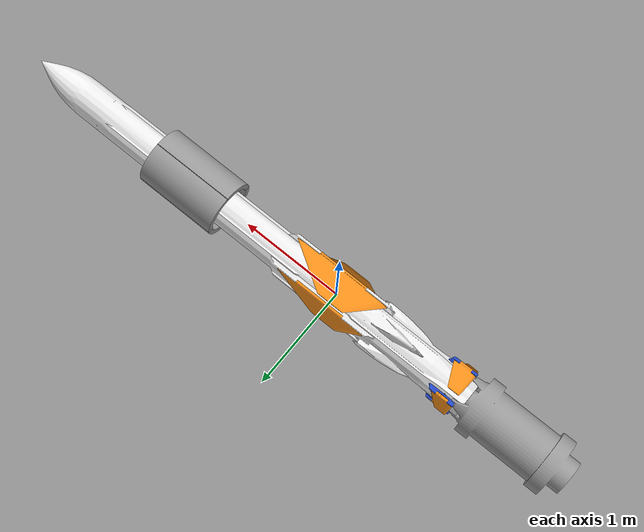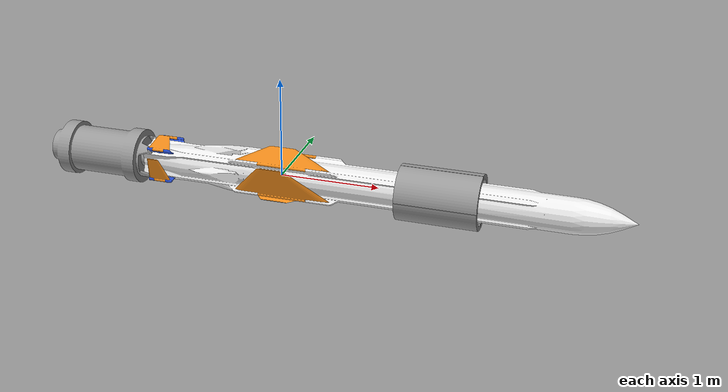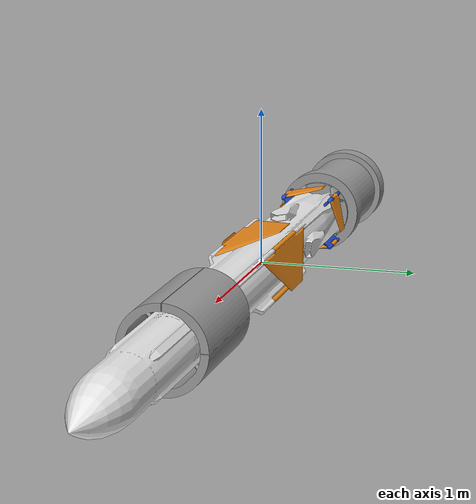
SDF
<sdf version='1.7'>
  <model name='mm40b3'>
    <link name='base_link'>
      <inertial>
        <pose>0.438711 -9e-06 -9e-06 0 -0 0</pose>
        <mass>562.768</mass>
        <inertia>
          <ixx>12.0787</ixx>
          <ixy>0</ixy>
          <ixz>0</ixz>
          <iyy>817.099</iyy>
          <iyz>0</iyz>
          <izz>817.099</izz>
        </inertia>
      </inertial>
      <collision name='base_link_collision'>
        <pose>0 0 0 0 -0 0</pose>
        <geometry>
          <mesh>
            <scale>0.001 0.001 0.001</scale>
            <uri>model://mm40b3_description/meshes/base_link.stl</uri>
          </mesh>
        </geometry>
        <surface>
          <contact>
            <ode/>
          </contact>
          <friction>
            <ode>
              <mu>0.2</mu>
              <mu2>0.2</mu2>
            </ode>
          </friction>
        </surface>
      </collision>
      <visual name='base_link_visual'>
        <pose>0 0 0 0 -0 0</pose>
        <geometry>
          <mesh>
            <scale>0.001 0.001 0.001</scale>
            <uri>model://mm40b3_description/meshes/base_link.stl</uri>
          </mesh>
        </geometry>
        <plugin name='LiftDragVisual' filename='libMultiplevectorVisual.so'>
          <topic_name vector_size='5'>AeroVectors</topic_name>
        </plugin>
        <plugin name='VectoredThrustVisual' filename='libForceVisual.so'>
          <topic_name>thrust_visual</topic_name>
          <color>Gazebo/Green</color>
        </plugin>
        <material>
          <script>
            <name>Gazebo/White</name>
            <uri>file://media/materials/scripts/gazebo.material</uri>
          </script>
        </material>
      </visual>
      <self_collide>1</self_collide>
      <gravity>1</gravity>
      <sensor name='camera_top_side' type='camera'>
        <pose>-2 0 1.5 0 0.7854 0</pose>
        <camera>
          <horizontal_fov>2</horizontal_fov>
          <image>
            <width>640</width>
            <height>480</height>
          </image>
          <clip>
            <near>0.1</near>
            <far>100</far>
          </clip>
        </camera>
        <always_on>1</always_on>
        <update_rate>30</update_rate>
      </sensor>
      <sensor name='camera_right_side' type='camera'>
        <pose>-0 -2 0 0 -0 1.5708</pose>
        <camera>
          <horizontal_fov>2</horizontal_fov>
          <image>
            <width>640</width>
            <height>480</height>
          </image>
          <clip>
            <near>0.1</near>
            <far>1000</far>
          </clip>
        </camera>
        <always_on>1</always_on>
        <update_rate>30</update_rate>
      </sensor>
    </link>
    <joint name='HolderJoint1' type='fixed'>
      <pose relative_to='base_link'>1.81433 0.132484 0.132484 0 -0 0</pose>
      <parent>base_link</parent>
      <child>Holder_1</child>
      <axis>
        <dynamics>
          <spring_reference>0</spring_reference>
          <spring_stiffness>0</spring_stiffness>
        </dynamics>
        <xyz>0 0 1</xyz>
        <limit>
          <lower>-1e+16</lower>
          <upper>1e+16</upper>
        </limit>
      </axis>
      <physics>
        <ode>
          <limit>
            <cfm>0</cfm>
            <erp>0.2</erp>
          </limit>
        </ode>
      </physics>
    </joint>
    <link name='Holder_1'>
      <pose relative_to='HolderJoint1'>0 0 0 0 -0 0</pose>
      <inertial>
        <pose>-0.2 0.025233 0.025233 0 -0 0</pose>
        <mass>13.5</mass>
        <inertia>
          <ixx>0.184494</ixx>
          <ixy>0</ixy>
          <ixz>0</ixz>
          <iyy>0.864601</iyy>
          <iyz>0.079825</iyz>
          <izz>0.864601</izz>
        </inertia>
      </inertial>
      <collision name='Holder_1_collision'>
        <pose>-1.81433 -0.132484 -0.132484 0 -0 0</pose>
        <geometry>
          <mesh>
            <scale>0.001 0.001 0.001</scale>
            <uri>model://mm40b3_description/meshes/Holder_1.stl</uri>
          </mesh>
        </geometry>
        <surface>
          <contact>
            <ode/>
          </contact>
          <friction>
            <ode>
              <mu>0.2</mu>
              <mu2>0.2</mu2>
            </ode>
          </friction>
        </surface>
      </collision>
      <visual name='Holder_1_visual'>
        <pose>-1.81433 -0.132484 -0.132484 0 -0 0</pose>
        <geometry>
          <mesh>
            <scale>0.001 0.001 0.001</scale>
            <uri>model://mm40b3_description/meshes/Holder_1.stl</uri>
          </mesh>
        </geometry>
        <material>
          <script>
            <name>Gazebo/Grey</name>
            <uri>file://media/materials/scripts/gazebo.material</uri>
          </script>
        </material>
      </visual>
      <self_collide>0</self_collide>
    </link>
    <joint name='HolderJoint2' type='fixed'>
      <pose relative_to='base_link'>1.81433 -0.132502 0.132484 0 -0 0</pose>
      <parent>base_link</parent>
      <child>Holder_2</child>
      <axis>
        <dynamics>
          <spring_reference>0</spring_reference>
          <spring_stiffness>0</spring_stiffness>
        </dynamics>
        <xyz>0 0 1</xyz>
        <limit>
          <lower>-1e+16</lower>
          <upper>1e+16</upper>
        </limit>
      </axis>
      <physics>
        <ode>
          <limit>
            <cfm>0</cfm>
            <erp>0.2</erp>
          </limit>
        </ode>
      </physics>
    </joint>
    <link name='Holder_2'>
      <pose relative_to='HolderJoint2'>0 0 0 0 -0 0</pose>
      <inertial>
        <pose>-0.2 -0.025233 0.025233 0 -0 0</pose>
        <mass>13.5</mass>
        <inertia>
          <ixx>0.184494</ixx>
          <ixy>0</ixy>
          <ixz>0</ixz>
          <iyy>0.864601</iyy>
          <iyz>-0.079825</iyz>
          <izz>0.864601</izz>
        </inertia>
      </inertial>
      <collision name='Holder_2_collision'>
        <pose>-1.81433 0.132502 -0.132484 0 -0 0</pose>
        <geometry>
          <mesh>
            <scale>0.001 0.001 0.001</scale>
            <uri>model://mm40b3_description/meshes/Holder_2.stl</uri>
          </mesh>
        </geometry>
        <surface>
          <contact>
            <ode/>
          </contact>
          <friction>
            <ode>
              <mu>0.2</mu>
              <mu2>0.2</mu2>
            </ode>
          </friction>
        </surface>
      </collision>
      <visual name='Holder_2_visual'>
        <pose>-1.81433 0.132502 -0.132484 0 -0 0</pose>
        <geometry>
          <mesh>
            <scale>0.001 0.001 0.001</scale>
            <uri>model://mm40b3_description/meshes/Holder_2.stl</uri>
          </mesh>
        </geometry>
        <material>
          <script>
            <name>Gazebo/Grey</name>
            <uri>file://media/materials/scripts/gazebo.material</uri>
          </script>
        </material>
      </visual>
      <self_collide>0</self_collide>
    </link>
    <joint name='HolderJoint3' type='fixed'>
      <pose relative_to='base_link'>1.81433 -0.132502 -0.132502 0 -0 0</pose>
      <parent>base_link</parent>
      <child>Holder_3</child>
      <axis>
        <dynamics>
          <spring_reference>0</spring_reference>
          <spring_stiffness>0</spring_stiffness>
        </dynamics>
        <xyz>0 0 1</xyz>
        <limit>
          <lower>-1e+16</lower>
          <upper>1e+16</upper>
        </limit>
      </axis>
      <physics>
        <ode>
          <limit>
            <cfm>0</cfm>
            <erp>0.2</erp>
          </limit>
        </ode>
      </physics>
    </joint>
    <link name='Holder_3'>
      <pose relative_to='HolderJoint3'>0 0 0 0 -0 0</pose>
      <inertial>
        <pose>-0.2 -0.025233 -0.025233 0 -0 0</pose>
        <mass>13.5</mass>
        <inertia>
          <ixx>0.184494</ixx>
          <ixy>0</ixy>
          <ixz>0</ixz>
          <iyy>0.864601</iyy>
          <iyz>0.079825</iyz>
          <izz>0.864601</izz>
        </inertia>
      </inertial>
      <collision name='Holder_3_collision'>
        <pose>-1.81433 0.132502 0.132502 0 -0 0</pose>
        <geometry>
          <mesh>
            <scale>0.001 0.001 0.001</scale>
            <uri>model://mm40b3_description/meshes/Holder_3.stl</uri>
          </mesh>
        </geometry>
        <surface>
          <contact>
            <ode/>
          </contact>
          <friction>
            <ode>
              <mu>0.2</mu>
              <mu2>0.2</mu2>
            </ode>
          </friction>
        </surface>
      </collision>
      <visual name='Holder_3_visual'>
        <pose>-1.81433 0.132502 0.132502 0 -0 0</pose>
        <geometry>
          <mesh>
            <scale>0.001 0.001 0.001</scale>
            <uri>model://mm40b3_description/meshes/Holder_3.stl</uri>
          </mesh>
        </geometry>
        <material>
          <script>
            <name>Gazebo/Grey</name>
            <uri>file://media/materials/scripts/gazebo.material</uri>
          </script>
        </material>
      </visual>
      <self_collide>0</self_collide>
    </link>
    <joint name='HolderJoint4' type='fixed'>
      <pose relative_to='base_link'>1.81433 0.132484 -0.132502 0 -0 0</pose>
      <parent>base_link</parent>
      <child>Holder_4</child>
      <axis>
        <dynamics>
          <spring_reference>0</spring_reference>
          <spring_stiffness>0</spring_stiffness>
        </dynamics>
        <xyz>0 0 1</xyz>
        <limit>
          <lower>-1e+16</lower>
          <upper>1e+16</upper>
        </limit>
      </axis>
      <physics>
        <ode>
          <limit>
            <cfm>0</cfm>
            <erp>0.2</erp>
          </limit>
        </ode>
      </physics>
    </joint>
    <link name='Holder_4'>
      <pose relative_to='HolderJoint4'>0 0 0 0 -0 0</pose>
      <inertial>
        <pose>-0.2 0.025233 -0.025233 0 -0 0</pose>
        <mass>13.5</mass>
        <inertia>
          <ixx>0.184494</ixx>
          <ixy>0</ixy>
          <ixz>0</ixz>
          <iyy>0.864601</iyy>
          <iyz>-0.079825</iyz>
          <izz>0.864601</izz>
        </inertia>
      </inertial>
      <collision name='Holder_4_collision'>
        <pose>-1.81433 -0.132484 0.132502 0 -0 0</pose>
        <geometry>
          <mesh>
            <scale>0.001 0.001 0.001</scale>
            <uri>model://mm40b3_description/meshes/Holder_4.stl</uri>
          </mesh>
        </geometry>
        <surface>
          <contact>
            <ode/>
          </contact>
          <friction>
            <ode>
              <mu>0.2</mu>
              <mu2>0.2</mu2>
            </ode>
          </friction>
        </surface>
      </collision>
      <visual name='Holder_4_visual'>
        <pose>-1.81433 -0.132484 0.132502 0 -0 0</pose>
        <geometry>
          <mesh>
            <scale>0.001 0.001 0.001</scale>
            <uri>model://mm40b3_description/meshes/Holder_4.stl</uri>
          </mesh>
        </geometry>
        <material>
          <script>
            <name>Gazebo/Grey</name>
            <uri>file://media/materials/scripts/gazebo.material</uri>
          </script>
        </material>
      </visual>
      <self_collide>0</self_collide>
    </link>
    <joint name='booster_fixing' type='fixed'>
      <pose relative_to='base_link'>-1.44215 -9e-06 -9e-06 0 -0 0</pose>
      <parent>base_link</parent>
      <child>Booster_1</child>
      <axis>
        <dynamics>
          <spring_reference>0</spring_reference>
          <spring_stiffness>0</spring_stiffness>
        </dynamics>
        <xyz>0 0 1</xyz>
        <limit>
          <lower>-1e+16</lower>
          <upper>1e+16</upper>
        </limit>
      </axis>
      <physics>
        <ode>
          <limit>
            <cfm>0</cfm>
            <erp>0.2</erp>
          </limit>
        </ode>
      </physics>
    </joint>
    <link name='Booster_1'>
      <pose relative_to='booster_fixing'>0 0 0 0 -0 0</pose>
      <inertial>
        <pose>-0.530559 0 -0 0 -0 0</pose>
        <mass>120</mass>
        <inertia>
          <ixx>5.76864</ixx>
          <ixy>0</ixy>
          <ixz>0</ixz>
          <iyy>16.6186</iyy>
          <iyz>0</iyz>
          <izz>16.6186</izz>
        </inertia>
      </inertial>
      <collision name='Booster_1_collision'>
        <pose>1.44215 9e-06 9e-06 0 -0 0</pose>
        <geometry>
          <mesh>
            <scale>0.001 0.001 0.001</scale>
            <uri>model://mm40b3_description/meshes/Booster_1.stl</uri>
          </mesh>
        </geometry>
        <surface>
          <contact>
            <ode/>
          </contact>
          <friction>
            <ode>
              <mu>0.2</mu>
              <mu2>0.2</mu2>
            </ode>
          </friction>
        </surface>
      </collision>
      <visual name='Booster_1_visual'>
        <pose>1.44215 9e-06 9e-06 0 -0 0</pose>
        <geometry>
          <mesh>
            <scale>0.001 0.001 0.001</scale>
            <uri>model://mm40b3_description/meshes/Booster_1.stl</uri>
          </mesh>
        </geometry>
        <plugin name='SimpleThrustVisual' filename='libForceVisual.so'>
          <topic_name>booster_visual</topic_name>
          <color>Gazebo/Green</color>
        </plugin>
        <material>
          <script>
            <name>Gazebo/Gray</name>
            <uri>file://media/materials/scripts/gazebo.material</uri>
          </script>
        </material>
      </visual>
      <self_collide>1</self_collide>
    </link>
    <joint name='fins_rev1' type='revolute'>
      <pose relative_to='base_link'>-1.26213 0.12727 0.12727 0 -0 0</pose>
      <parent>base_link</parent>
      <child>FinHolder_1</child>
      <axis>
        <xyz>0 0.707107 0.707107</xyz>
        <limit>
          <lower>-0.349066</lower>
          <upper>0.349066</upper>
          <effort>100</effort>
          <velocity>100</velocity>
        </limit>
        <dynamics>
          <spring_reference>0</spring_reference>
          <spring_stiffness>0</spring_stiffness>
        </dynamics>
      </axis>
    </joint>
    <link name='FinHolder_1'>
      <pose relative_to='fins_rev1'>0 0 0 0 -0 0</pose>
      <inertial>
        <pose>0.01199 0.024895 0.024891 0 -0 0</pose>
        <mass>0.7</mass>
        <inertia>
          <ixx>0.00025</ixx>
          <ixy>3e-05</ixy>
          <ixz>3e-05</ixz>
          <iyy>0.004649</iyy>
          <iyz>-9.8e-05</iyz>
          <izz>0.004649</izz>
        </inertia>
      </inertial>
      <collision name='FinHolder_1_collision'>
        <pose>1.26213 -0.12727 -0.12727 0 -0 0</pose>
        <geometry>
          <mesh>
            <scale>0.001 0.001 0.001</scale>
            <uri>model://mm40b3_description/meshes/FinHolder_1.stl</uri>
          </mesh>
        </geometry>
        <surface>
          <contact>
            <ode/>
          </contact>
          <friction>
            <ode>
              <mu>0.2</mu>
              <mu2>0.2</mu2>
            </ode>
          </friction>
        </surface>
      </collision>
      <visual name='FinHolder_1_visual'>
        <pose>1.26213 -0.12727 -0.12727 0 -0 0</pose>
        <geometry>
          <mesh>
            <scale>0.001 0.001 0.001</scale>
            <uri>model://mm40b3_description/meshes/FinHolder_1.stl</uri>
          </mesh>
        </geometry>
        <material>
          <script>
            <name>Gazebo/Blue</name>
            <uri>file://media/materials/scripts/gazebo.material</uri>
          </script>
        </material>
      </visual>
      <self_collide>1</self_collide>
    </link>
    <joint name='fin_fold1' type='revolute'>
      <pose relative_to='FinHolder_1'>0 0.038891 0.038891 0 -0 0</pose>
      <parent>FinHolder_1</parent>
      <child>Fin_1</child>
      <axis>
        <xyz>1 0 0</xyz>
        <limit>
          <lower>0</lower>
          <upper>2.14676</upper>
          <effort>100</effort>
          <velocity>100</velocity>
        </limit>
        <dynamics>
          <spring_reference>0</spring_reference>
          <spring_stiffness>0</spring_stiffness>
        </dynamics>
      </axis>
    </joint>
    <link name='Fin_1'>
      <pose relative_to='fin_fold1'>0 0 0 0 -0 0</pose>
      <inertial>
        <pose>-0.014318 0.018053 -0.08493 0 -0 0</pose>
        <mass>1.5</mass>
        <inertia>
          <ixx>0.006929</ixx>
          <ixy>0.000264</ixy>
          <ixz>-0.001243</ixz>
          <iyy>0.010397</iyy>
          <iyz>0.001396</iyz>
          <izz>0.004127</izz>
        </inertia>
      </inertial>
      <collision name='Fin_1_collision'>
        <pose>1.26213 -0.166161 -0.166161 0 -0 0</pose>
        <geometry>
          <mesh>
            <scale>0.001 0.001 0.001</scale>
            <uri>model://mm40b3_description/meshes/Fin_1.stl</uri>
          </mesh>
        </geometry>
        <surface>
          <contact>
            <ode/>
          </contact>
          <friction>
            <ode>
              <mu>0.2</mu>
              <mu2>0.2</mu2>
            </ode>
          </friction>
        </surface>
      </collision>
      <visual name='Fin_1_visual'>
        <pose>1.26213 -0.166161 -0.166161 0 -0 0</pose>
        <geometry>
          <mesh>
            <scale>0.001 0.001 0.001</scale>
            <uri>model://mm40b3_description/meshes/Fin_1.stl</uri>
          </mesh>
        </geometry>
        <material>
          <script>
            <name>Gazebo/Orange</name>
            <uri>file://media/materials/scripts/gazebo.material</uri>
          </script>
        </material>
      </visual>
      <self_collide>1</self_collide>
    </link>
    <joint name='fins_rev2' type='revolute'>
      <pose relative_to='base_link'>-1.26213 0.12727 -0.127288 0 -0 0</pose>
      <parent>base_link</parent>
      <child>FinHolder_2</child>
      <axis>
        <xyz>0 0.707107 -0.707107</xyz>
        <limit>
          <lower>-0.349066</lower>
          <upper>0.349066</upper>
          <effort>100</effort>
          <velocity>100</velocity>
        </limit>
        <dynamics>
          <spring_reference>0</spring_reference>
          <spring_stiffness>0</spring_stiffness>
        </dynamics>
      </axis>
    </joint>
    <link name='FinHolder_2'>
      <pose relative_to='fins_rev2'>0 0 0 0 -0 0</pose>
      <inertial>
        <pose>0.01199 0.024891 -0.024895 0 -0 0</pose>
        <mass>0.7</mass>
        <inertia>
          <ixx>0.00025</ixx>
          <ixy>3e-05</ixy>
          <ixz>-3e-05</ixz>
          <iyy>0.004649</iyy>
          <iyz>9.8e-05</iyz>
          <izz>0.004649</izz>
        </inertia>
      </inertial>
      <collision name='FinHolder_2_collision'>
        <pose>1.26213 -0.12727 0.127288 0 -0 0</pose>
        <geometry>
          <mesh>
            <scale>0.001 0.001 0.001</scale>
            <uri>model://mm40b3_description/meshes/FinHolder_2.stl</uri>
          </mesh>
        </geometry>
        <surface>
          <contact>
            <ode/>
          </contact>
          <friction>
            <ode>
              <mu>0.2</mu>
              <mu2>0.2</mu2>
            </ode>
          </friction>
        </surface>
      </collision>
      <visual name='FinHolder_2_visual'>
        <pose>1.26213 -0.12727 0.127288 0 -0 0</pose>
        <geometry>
          <mesh>
            <scale>0.001 0.001 0.001</scale>
            <uri>model://mm40b3_description/meshes/FinHolder_2.stl</uri>
          </mesh>
        </geometry>
        <material>
          <script>
            <name>Gazebo/Blue</name>
            <uri>file://media/materials/scripts/gazebo.material</uri>
          </script>
        </material>
      </visual>
      <self_collide>1</self_collide>
    </link>
    <joint name='fin_fold2' type='revolute'>
      <pose relative_to='FinHolder_2'>0 0.038879 -0.038903 0 -0 0</pose>
      <parent>FinHolder_2</parent>
      <child>Fin_2</child>
      <axis>
        <xyz>1 0 0</xyz>
        <limit>
          <lower>0</lower>
          <upper>2.14676</upper>
          <effort>100</effort>
          <velocity>100</velocity>
        </limit>
        <dynamics>
          <spring_reference>0</spring_reference>
          <spring_stiffness>0</spring_stiffness>
        </dynamics>
      </axis>
    </joint>
    <link name='Fin_2'>
      <pose relative_to='fin_fold2'>0 0 0 0 -0 0</pose>
      <inertial>
        <pose>-0.014318 -0.084931 -0.018053 0 -0 0</pose>
        <mass>1.5</mass>
        <inertia>
          <ixx>0.006929</ixx>
          <ixy>-0.001243</ixy>
          <ixz>-0.000264</ixz>
          <iyy>0.004127</iyy>
          <iyz>-0.001396</iyz>
          <izz>0.010397</izz>
        </inertia>
      </inertial>
      <collision name='Fin_2_collision'>
        <pose>1.26213 -0.166149 0.166191 0 -0 0</pose>
        <geometry>
          <mesh>
            <scale>0.001 0.001 0.001</scale>
            <uri>model://mm40b3_description/meshes/Fin_2.stl</uri>
          </mesh>
        </geometry>
        <surface>
          <contact>
            <ode/>
          </contact>
          <friction>
            <ode>
              <mu>0.2</mu>
              <mu2>0.2</mu2>
            </ode>
          </friction>
        </surface>
      </collision>
      <visual name='Fin_2_visual'>
        <pose>1.26213 -0.166149 0.166191 0 -0 0</pose>
        <geometry>
          <mesh>
            <scale>0.001 0.001 0.001</scale>
            <uri>model://mm40b3_description/meshes/Fin_2.stl</uri>
          </mesh>
        </geometry>
        <material>
          <script>
            <name>Gazebo/Orange</name>
            <uri>file://media/materials/scripts/gazebo.material</uri>
          </script>
        </material>
      </visual>
      <self_collide>1</self_collide>
    </link>
    <joint name='fins_rev3' type='revolute'>
      <pose relative_to='base_link'>-1.26213 -0.127288 -0.127288 0 -0 0</pose>
      <parent>base_link</parent>
      <child>FinHolder_3</child>
      <axis>
        <xyz>0 -0.707107 -0.707107</xyz>
        <limit>
          <lower>-0.349066</lower>
          <upper>0.349066</upper>
          <effort>100</effort>
          <velocity>100</velocity>
        </limit>
        <dynamics>
          <spring_reference>0</spring_reference>
          <spring_stiffness>0</spring_stiffness>
        </dynamics>
      </axis>
    </joint>
    <link name='FinHolder_3'>
      <pose relative_to='fins_rev3'>0 0 0 0 -0 0</pose>
      <inertial>
        <pose>0.01199 -0.024895 -0.024891 0 -0 0</pose>
        <mass>0.7</mass>
        <inertia>
          <ixx>0.00025</ixx>
          <ixy>-3e-05</ixy>
          <ixz>-3e-05</ixz>
          <iyy>0.004649</iyy>
          <iyz>-9.8e-05</iyz>
          <izz>0.004649</izz>
        </inertia>
      </inertial>
      <collision name='FinHolder_3_collision'>
        <pose>1.26213 0.127288 0.127288 0 -0 0</pose>
        <geometry>
          <mesh>
            <scale>0.001 0.001 0.001</scale>
            <uri>model://mm40b3_description/meshes/FinHolder_3.stl</uri>
          </mesh>
        </geometry>
        <surface>
          <contact>
            <ode/>
          </contact>
          <friction>
            <ode>
              <mu>0.2</mu>
              <mu2>0.2</mu2>
            </ode>
          </friction>
        </surface>
      </collision>
      <visual name='FinHolder_3_visual'>
        <pose>1.26213 0.127288 0.127288 0 -0 0</pose>
        <geometry>
          <mesh>
            <scale>0.001 0.001 0.001</scale>
            <uri>model://mm40b3_description/meshes/FinHolder_3.stl</uri>
          </mesh>
        </geometry>
        <material>
          <script>
            <name>Gazebo/Blue</name>
            <uri>file://media/materials/scripts/gazebo.material</uri>
          </script>
        </material>
      </visual>
      <self_collide>1</self_collide>
    </link>
    <joint name='fin_fold3' type='revolute'>
      <pose relative_to='FinHolder_3'>0 -0.038891 -0.038891 0 -0 0</pose>
      <parent>FinHolder_3</parent>
      <child>Fin_3</child>
      <axis>
        <xyz>1 0 0</xyz>
        <limit>
          <lower>0</lower>
          <upper>2.14676</upper>
          <effort>100</effort>
          <velocity>100</velocity>
        </limit>
        <dynamics>
          <spring_reference>0</spring_reference>
          <spring_stiffness>0</spring_stiffness>
        </dynamics>
      </axis>
    </joint>
    <link name='Fin_3'>
      <pose relative_to='fin_fold3'>0 0 0 0 -0 0</pose>
      <inertial>
        <pose>-0.014318 -0.018053 0.08493 0 -0 0</pose>
        <mass>1.5</mass>
        <inertia>
          <ixx>0.006929</ixx>
          <ixy>-0.000264</ixy>
          <ixz>0.001243</ixz>
          <iyy>0.010397</iyy>
          <iyz>0.001396</iyz>
          <izz>0.004127</izz>
        </inertia>
      </inertial>
      <collision name='Fin_3_collision'>
        <pose>1.26213 0.166179 0.166179 0 -0 0</pose>
        <geometry>
          <mesh>
            <scale>0.001 0.001 0.001</scale>
            <uri>model://mm40b3_description/meshes/Fin_3.stl</uri>
          </mesh>
        </geometry>
        <surface>
          <contact>
            <ode/>
          </contact>
          <friction>
            <ode>
              <mu>0.2</mu>
              <mu2>0.2</mu2>
            </ode>
          </friction>
        </surface>
      </collision>
      <visual name='Fin_3_visual'>
        <pose>1.26213 0.166179 0.166179 0 -0 0</pose>
        <geometry>
          <mesh>
            <scale>0.001 0.001 0.001</scale>
            <uri>model://mm40b3_description/meshes/Fin_3.stl</uri>
          </mesh>
        </geometry>
        <material>
          <script>
            <name>Gazebo/Orange</name>
            <uri>file://media/materials/scripts/gazebo.material</uri>
          </script>
        </material>
      </visual>
      <self_collide>1</self_collide>
    </link>
    <joint name='fins_rev4' type='revolute'>
      <pose relative_to='base_link'>-1.26213 -0.127288 0.12727 0 -0 0</pose>
      <parent>base_link</parent>
      <child>FinHolder_4</child>
      <axis>
        <xyz>0 -0.707107 0.707107</xyz>
        <limit>
          <lower>-0.349066</lower>
          <upper>0.349066</upper>
          <effort>100</effort>
          <velocity>100</velocity>
        </limit>
        <dynamics>
          <spring_reference>0</spring_reference>
          <spring_stiffness>0</spring_stiffness>
        </dynamics>
      </axis>
    </joint>
    <link name='FinHolder_4'>
      <pose relative_to='fins_rev4'>0 0 0 0 -0 0</pose>
      <inertial>
        <pose>0.01199 -0.024891 0.024895 0 -0 0</pose>
        <mass>0.7</mass>
        <inertia>
          <ixx>0.00025</ixx>
          <ixy>-3e-05</ixy>
          <ixz>3e-05</ixz>
          <iyy>0.004649</iyy>
          <iyz>9.8e-05</iyz>
          <izz>0.004649</izz>
        </inertia>
      </inertial>
      <collision name='FinHolder_4_collision'>
        <pose>1.26213 0.127288 -0.12727 0 -0 0</pose>
        <geometry>
          <mesh>
            <scale>0.001 0.001 0.001</scale>
            <uri>model://mm40b3_description/meshes/FinHolder_4.stl</uri>
          </mesh>
        </geometry>
        <surface>
          <contact>
            <ode/>
          </contact>
          <friction>
            <ode>
              <mu>0.2</mu>
              <mu2>0.2</mu2>
            </ode>
          </friction>
        </surface>
      </collision>
      <visual name='FinHolder_4_visual'>
        <pose>1.26213 0.127288 -0.12727 0 -0 0</pose>
        <geometry>
          <mesh>
            <scale>0.001 0.001 0.001</scale>
            <uri>model://mm40b3_description/meshes/FinHolder_4.stl</uri>
          </mesh>
        </geometry>
        <material>
          <script>
            <name>Gazebo/Blue</name>
            <uri>file://media/materials/scripts/gazebo.material</uri>
          </script>
        </material>
      </visual>
      <self_collide>1</self_collide>
    </link>
    <joint name='fin_fold4' type='revolute'>
      <pose relative_to='FinHolder_4'>0 -0.038891 0.038891 0 -0 0</pose>
      <parent>FinHolder_4</parent>
      <child>Fin_4</child>
      <axis>
        <xyz>1 0 0</xyz>
        <limit>
          <lower>0</lower>
          <upper>2.14676</upper>
          <effort>100</effort>
          <velocity>100</velocity>
        </limit>
        <dynamics>
          <spring_reference>0</spring_reference>
          <spring_stiffness>0</spring_stiffness>
        </dynamics>
      </axis>
    </joint>
    <link name='Fin_4'>
      <pose relative_to='fin_fold4'>0 0 0 0 -0 0</pose>
      <inertial>
        <pose>-0.014318 0.08493 0.018053 0 -0 0</pose>
        <mass>1.5</mass>
        <inertia>
          <ixx>0.006929</ixx>
          <ixy>0.001243</ixy>
          <ixz>0.000264</ixz>
          <iyy>0.004127</iyy>
          <iyz>-0.001396</iyz>
          <izz>0.010397</izz>
        </inertia>
      </inertial>
      <collision name='Fin_4_collision'>
        <pose>1.26213 0.166179 -0.166161 0 -0 0</pose>
        <geometry>
          <mesh>
            <scale>0.001 0.001 0.001</scale>
            <uri>model://mm40b3_description/meshes/Fin_4.stl</uri>
          </mesh>
        </geometry>
        <surface>
          <contact>
            <ode/>
          </contact>
          <friction>
            <ode>
              <mu>0.2</mu>
              <mu2>0.2</mu2>
            </ode>
          </friction>
        </surface>
      </collision>
      <visual name='Fin_4_visual'>
        <pose>1.26213 0.166179 -0.166161 0 -0 0</pose>
        <geometry>
          <mesh>
            <scale>0.001 0.001 0.001</scale>
            <uri>model://mm40b3_description/meshes/Fin_4.stl</uri>
          </mesh>
        </geometry>
        <material>
          <script>
            <name>Gazebo/Orange</name>
            <uri>file://media/materials/scripts/gazebo.material</uri>
          </script>
        </material>
      </visual>
      <self_collide>1</self_collide>
    </link>
    <joint name='wings_fold1' type='revolute'>
      <pose relative_to='base_link'>0.057855 0.163346 0.163346 0 -0 0</pose>
      <parent>base_link</parent>
      <child>Wing1_1</child>
      <axis>
        <xyz>1 0 0</xyz>
        <limit>
          <lower>0</lower>
          <upper>2.14676</upper>
          <effort>100</effort>
          <velocity>100</velocity>
        </limit>
        <dynamics>
          <spring_reference>0</spring_reference>
          <spring_stiffness>0</spring_stiffness>
        </dynamics>
      </axis>
    </joint>
    <link name='Wing1_1'>
      <pose relative_to='wings_fold1'>0 0 0 0 -0 0</pose>
      <inertial>
        <pose>-0.031208 0.020959 -0.098606 0 -0 0</pose>
        <mass>9.29998</mass>
        <inertia>
          <ixx>0.055746</ixx>
          <ixy>0.003624</ixy>
          <ixz>-0.017051</ixz>
          <iyy>0.442635</iyy>
          <iyz>0.011218</iyz>
          <izz>0.392244</izz>
        </inertia>
      </inertial>
      <collision name='Wing1_1_collision'>
        <pose>-0.057855 -0.163346 -0.163346 0 -0 0</pose>
        <geometry>
          <mesh>
            <scale>0.001 0.001 0.001</scale>
            <uri>model://mm40b3_description/meshes/Wing1_1.stl</uri>
          </mesh>
        </geometry>
        <surface>
          <contact>
            <ode/>
          </contact>
          <friction>
            <ode>
              <mu>0.2</mu>
              <mu2>0.2</mu2>
            </ode>
          </friction>
        </surface>
      </collision>
      <visual name='Wing1_1_visual'>
        <pose>-0.057855 -0.163346 -0.163346 0 -0 0</pose>
        <geometry>
          <mesh>
            <scale>0.001 0.001 0.001</scale>
            <uri>model://mm40b3_description/meshes/Wing1_1.stl</uri>
          </mesh>
        </geometry>
        <material>
          <script>
            <name>Gazebo/Orange</name>
            <uri>file://media/materials/scripts/gazebo.material</uri>
          </script>
        </material>
      </visual>
      <self_collide>1</self_collide>
    </link>
    <joint name='wings_fold2' type='revolute'>
      <pose relative_to='base_link'>0.057855 0.163346 -0.163364 0 -0 0</pose>
      <parent>base_link</parent>
      <child>Wing1_2</child>
      <axis>
        <xyz>1 0 0</xyz>
        <limit>
          <lower>0</lower>
          <upper>2.14676</upper>
          <effort>100</effort>
          <velocity>100</velocity>
        </limit>
        <dynamics>
          <spring_reference>0</spring_reference>
          <spring_stiffness>0</spring_stiffness>
        </dynamics>
      </axis>
    </joint>
    <link name='Wing1_2'>
      <pose relative_to='wings_fold2'>0 0 0 0 -0 0</pose>
      <inertial>
        <pose>-0.031208 -0.097628 -0.020751 0 -0 0</pose>
        <mass>9.29998</mass>
        <inertia>
          <ixx>0.055746</ixx>
          <ixy>-0.017051</ixy>
          <ixz>-0.003624</ixz>
          <iyy>0.392244</iyy>
          <iyz>-0.011218</iyz>
          <izz>0.442635</izz>
        </inertia>
      </inertial>
      <collision name='Wing1_2_collision'>
        <pose>-0.057855 -0.163346 0.163364 0 -0 0</pose>
        <geometry>
          <mesh>
            <scale>0.001 0.001 0.001</scale>
            <uri>model://mm40b3_description/meshes/Wing1_2.stl</uri>
          </mesh>
        </geometry>
        <surface>
          <contact>
            <ode/>
          </contact>
          <friction>
            <ode>
              <mu>0.2</mu>
              <mu2>0.2</mu2>
            </ode>
          </friction>
        </surface>
      </collision>
      <visual name='Wing1_2_visual'>
        <pose>-0.057855 -0.163346 0.163364 0 -0 0</pose>
        <geometry>
          <mesh>
            <scale>0.001 0.001 0.001</scale>
            <uri>model://mm40b3_description/meshes/Wing1_2.stl</uri>
          </mesh>
        </geometry>
        <material>
          <script>
            <name>Gazebo/Orange</name>
            <uri>file://media/materials/scripts/gazebo.material</uri>
          </script>
        </material>
      </visual>
      <self_collide>1</self_collide>
    </link>
    <joint name='wings_fold3' type='revolute'>
      <pose relative_to='base_link'>0.057855 -0.163364 -0.163364 0 -0 0</pose>
      <parent>base_link</parent>
      <child>Wing1_3</child>
      <axis>
        <xyz>1 0 0</xyz>
        <limit>
          <lower>0</lower>
          <upper>2.14676</upper>
          <effort>100</effort>
          <velocity>100</velocity>
        </limit>
        <dynamics>
          <spring_reference>0</spring_reference>
          <spring_stiffness>0</spring_stiffness>
        </dynamics>
      </axis>
    </joint>
    <link name='Wing1_3'>
      <pose relative_to='wings_fold3'>0 0 0 0 -0 0</pose>
      <inertial>
        <pose>-0.031208 -0.020751 0.097628 0 -0 0</pose>
        <mass>9.29998</mass>
        <inertia>
          <ixx>0.055746</ixx>
          <ixy>-0.003624</ixy>
          <ixz>0.017051</ixz>
          <iyy>0.442635</iyy>
          <iyz>0.011218</iyz>
          <izz>0.392244</izz>
        </inertia>
      </inertial>
      <collision name='Wing1_3_collision'>
        <pose>-0.057855 0.163364 0.163364 0 -0 0</pose>
        <geometry>
          <mesh>
            <scale>0.001 0.001 0.001</scale>
            <uri>model://mm40b3_description/meshes/Wing1_3.stl</uri>
          </mesh>
        </geometry>
        <surface>
          <contact>
            <ode/>
          </contact>
          <friction>
            <ode>
              <mu>0.2</mu>
              <mu2>0.2</mu2>
            </ode>
          </friction>
        </surface>
      </collision>
      <visual name='Wing1_3_visual'>
        <pose>-0.057855 0.163364 0.163364 0 -0 0</pose>
        <geometry>
          <mesh>
            <scale>0.001 0.001 0.001</scale>
            <uri>model://mm40b3_description/meshes/Wing1_3.stl</uri>
          </mesh>
        </geometry>
        <material>
          <script>
            <name>Gazebo/Orange</name>
            <uri>file://media/materials/scripts/gazebo.material</uri>
          </script>
        </material>
      </visual>
      <self_collide>1</self_collide>
    </link>
    <joint name='wings_fold4' type='revolute'>
      <pose relative_to='base_link'>0.057855 -0.163364 0.163346 0 -0 0</pose>
      <parent>base_link</parent>
      <child>Wing1_4</child>
      <axis>
        <xyz>1 0 0</xyz>
        <limit>
          <lower>0</lower>
          <upper>2.14676</upper>
          <effort>100</effort>
          <velocity>100</velocity>
        </limit>
        <dynamics>
          <spring_reference>0</spring_reference>
          <spring_stiffness>0</spring_stiffness>
        </dynamics>
      </axis>
    </joint>
    <link name='Wing1_4'>
      <pose relative_to='wings_fold4'>0 0 0 0 -0 0</pose>
      <inertial>
        <pose>-0.031208 0.097628 0.020751 0 -0 0</pose>
        <mass>9.29998</mass>
        <inertia>
          <ixx>0.055746</ixx>
          <ixy>0.017051</ixy>
          <ixz>0.003624</ixz>
          <iyy>0.392244</iyy>
          <iyz>-0.011218</iyz>
          <izz>0.442635</izz>
        </inertia>
      </inertial>
      <collision name='Wing1_4_collision'>
        <pose>-0.057855 0.163364 -0.163346 0 -0 0</pose>
        <geometry>
          <mesh>
            <scale>0.001 0.001 0.001</scale>
            <uri>model://mm40b3_description/meshes/Wing1_4.stl</uri>
          </mesh>
        </geometry>
        <surface>
          <contact>
            <ode/>
          </contact>
          <friction>
            <ode>
              <mu>0.2</mu>
              <mu2>0.2</mu2>
            </ode>
          </friction>
        </surface>
      </collision>
      <visual name='Wing1_4_visual'>
        <pose>-0.057855 0.163364 -0.163346 0 -0 0</pose>
        <geometry>
          <mesh>
            <scale>0.001 0.001 0.001</scale>
            <uri>model://mm40b3_description/meshes/Wing1_4.stl</uri>
          </mesh>
        </geometry>
        <material>
          <script>
            <name>Gazebo/Orange</name>
            <uri>file://media/materials/scripts/gazebo.material</uri>
          </script>
        </material>
      </visual>
      <self_collide>1</self_collide>
    </link>
    <static>0</static>
    <plugin name='mm40b3_controller' filename='libgazebo_ros_control.so'>
      <robotNamespace>mm40b3_controller</robotNamespace>
      <robotSimType>gazebo_ros_control/DefaultRobotHWSim</robotSimType>
    </plugin>
    <plugin name='BoosterThrust' filename='libSimpleThruster.so'>
      <link_name>Booster_1</link_name>
      <forward_dir>1 0 0</forward_dir>
      <thrust_origin>-0.820 0 0</thrust_origin>
      <robotNamespace/>
      <topic_name>booster_visual</topic_name>
      <thrust_topic>booster_force</thrust_topic>
    </plugin>
    <plugin name='ThrustVectoring' filename='libThrustVectoring.so'>
      <link_name>base_link</link_name>
      <forward_dir>1 0 0</forward_dir>
      <thrust_origin>-1.540 0 0</thrust_origin>
      <robotNamespace/>
      <topic_name>thrust_visual</topic_name>
      <vector_topic>thrust_force</vector_topic>
    </plugin>
    <plugin name='FullBodyAerodynamic' filename='libAerodynamic.so'>
      <cp>0.0 0.0 0.0</cp>
      <sref>0.096</sref>
      <lref>0.350</lref>
      <topic_name>AeroVectors</topic_name>
      <air_density>1.2041</air_density>
      <link_name>base_link</link_name>
      <robotNamespace/>
      <radial_symmetry>1/</radial_symmetry>
      <forward>1 0 0</forward>
    </plugin>
  </model>
</sdf>
